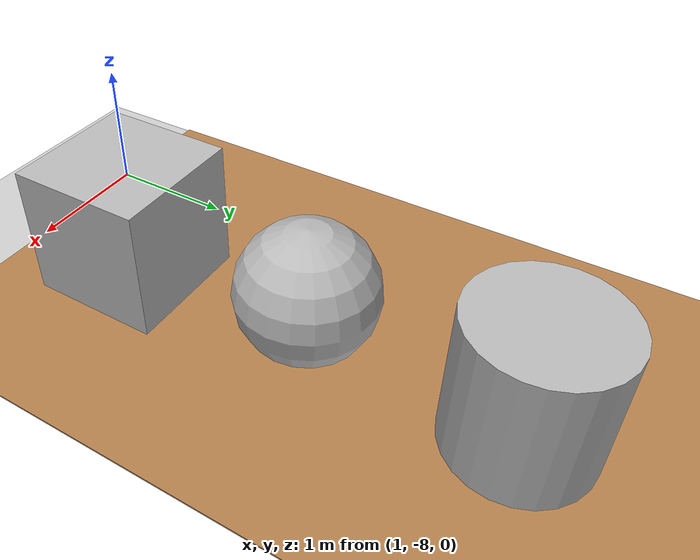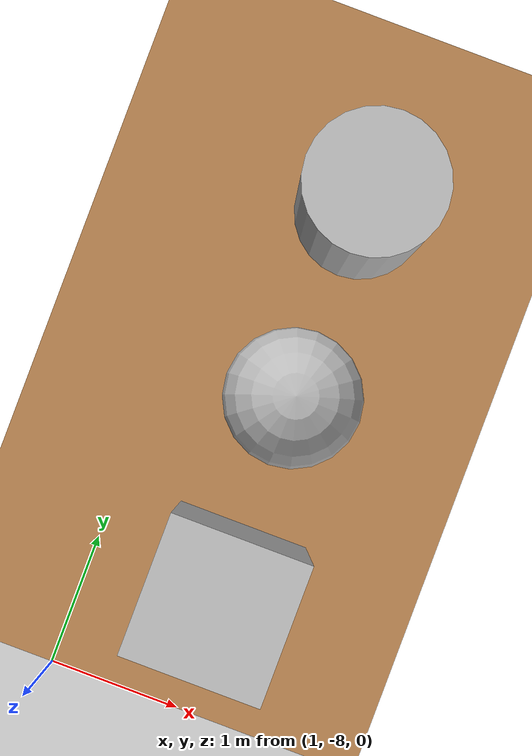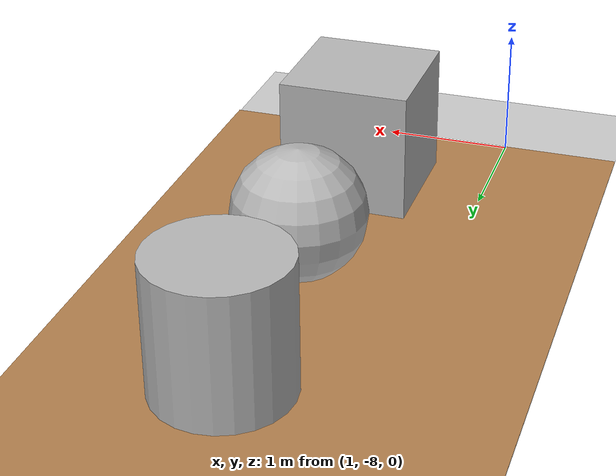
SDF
<sdf version="1.7">
 <world name="default">
  <model name="ground_plane">
   <static>1</static>
   <link name="link">
    <collision name="collision">
     <geometry><plane><normal>0 0 1</normal><size>100 100</size></plane></geometry>
     <surface>
      <contact><collide_bitmask>65535</collide_bitmask></contact>
      <friction><ode><mu>100</mu><mu2>50</mu2></ode></friction>
     </surface>
    </collision>
    <visual name="visual">
     <cast_shadows>0</cast_shadows>
     <geometry><plane><normal>0 0 1</normal><size>100 100</size></plane></geometry>
     <material>
      <script><uri>file://media/materials/scripts/gazebo.material</uri><name>Gazebo/Grey</name></script>
     </material>
    </visual>
   </link>
  </model>
  <model name="ground">
   <link name="Wall_2">
    <pose>6.2457 -16.572 0 0 -0 0</pose>
    <inertial>
     <mass>1</mass>
     <inertia><ixx>1</ixx><ixy>0</ixy><ixz>0</ixz><iyy>1</iyy><iyz>0</iyz><izz>1</izz></inertia>
    </inertial>
    <visual name="Wall_2_Visual">
     <pose>0 0 0.005 0 -0 0</pose>
     <geometry><box><size>14 17 0.01</size></box></geometry>
     <material>
      <script><uri>file://media/materials/scripts/gazebo.material</uri><name>Gazebo/Wood</name></script>
      <ambient>0 0 0 1</ambient>
      <shader type="pixel"><normal_map>__default__</normal_map></shader>
      <diffuse>1 1 1 1</diffuse>
      <specular>0.2 0.2 0.2 1</specular>
      <emissive>0 0 0 1</emissive>
     </material>
     <meta><layer>0</layer></meta>
    </visual>
    <collision name="Wall_2_Collision">
     <pose>0 0 0.005 0 -0 0</pose>
     <geometry><box><size>14 17 0.01</size></box></geometry>
     <surface>
      <friction>
       <ode><mu>1</mu><mu2>1</mu2><fdir1>0 0 0</fdir1><slip1>0</slip1><slip2>0</slip2></ode>
       <torsional>
        <coefficient>1</coefficient>
        <patch_radius>0</patch_radius>
        <surface_radius>0</surface_radius>
        <use_patch_radius>1</use_patch_radius>
        <ode><slip>0</slip></ode>
       </torsional>
      </friction>
      <bounce><restitution_coefficient>0</restitution_coefficient><threshold>1e+06</threshold></bounce>
      <contact>
       <collide_without_contact>0</collide_without_contact>
       <collide_without_contact_bitmask>1</collide_without_contact_bitmask>
       <collide_bitmask>1</collide_bitmask>
       <ode>
        <soft_cfm>0</soft_cfm>
        <soft_erp>0.2</soft_erp>
        <kp>1e+13</kp>
        <kd>1</kd>
        <max_vel>0.01</max_vel>
        <min_depth>0</min_depth>
       </ode>
       <bullet>
        <split_impulse>1</split_impulse>
        <split_impulse_penetration_threshold>-0.01</split_impulse_penetration_threshold>
        <soft_cfm>0</soft_cfm>
        <soft_erp>0.2</soft_erp>
        <kp>1e+13</kp>
        <kd>1</kd>
       </bullet>
      </contact>
     </surface>
    </collision>
   </link>
   <static>1</static>
   <pose>-6.42983 17.0701 0 0 -0 0</pose>
  </model>
  <model name="textured_shapes_0">
   <pose>1.98594 -5.53078 0.51 0 -0 0</pose>
   <link name="box">
    <pose>0 -1.5 0 0 -0 0</pose>
    <collision name="collision"><geometry><box><size>1 1 1</size></box></geometry></collision>
    <visual name="visual">
     <geometry><box><size>1 1 1</size></box></geometry>
     <material>
      <script>
       <uri>model://textured_shapes/materials/scripts</uri>
       <uri>model://textured_shapes/materials/textures</uri>
       <name>TexturedShape/Squares</name>
      </script>
     </material>
    </visual>
    <inertial>
     <inertia><ixx>1</ixx><ixy>0</ixy><ixz>0</ixz><iyy>1</iyy><iyz>0</iyz><izz>1</izz></inertia>
     <mass>1</mass>
    </inertial>
   </link>
   <link name="sphere">
    <collision name="collision"><geometry><sphere><radius>0.5</radius></sphere></geometry></collision>
    <visual name="visual">
     <geometry><sphere><radius>0.5</radius></sphere></geometry>
     <material>
      <script>
       <uri>model://textured_shapes/materials/scripts</uri>
       <uri>model://textured_shapes/materials/textures</uri>
       <name>TexturedShape/Squares</name>
      </script>
     </material>
    </visual>
    <inertial>
     <inertia><ixx>1</ixx><ixy>0</ixy><ixz>0</ixz><iyy>1</iyy><iyz>0</iyz><izz>1</izz></inertia>
     <mass>1</mass>
    </inertial>
   </link>
   <link name="cylinder">
    <pose>0 1.5 0 0 -0 0</pose>
    <collision name="collision">
     <geometry><cylinder><radius>0.5</radius><length>1</length></cylinder></geometry>
    </collision>
    <visual name="visual">
     <geometry><cylinder><radius>0.5</radius><length>1</length></cylinder></geometry>
     <material>
      <script>
       <uri>model://textured_shapes/materials/scripts</uri>
       <uri>model://textured_shapes/materials/textures</uri>
       <name>TexturedShape/Squares</name>
      </script>
     </material>
    </visual>
    <inertial>
     <inertia><ixx>1</ixx><ixy>0</ixy><ixz>0</ixz><iyy>1</iyy><iyz>0</iyz><izz>1</izz></inertia>
     <mass>1</mass>
    </inertial>
   </link>
  </model>
 </world>
</sdf>
